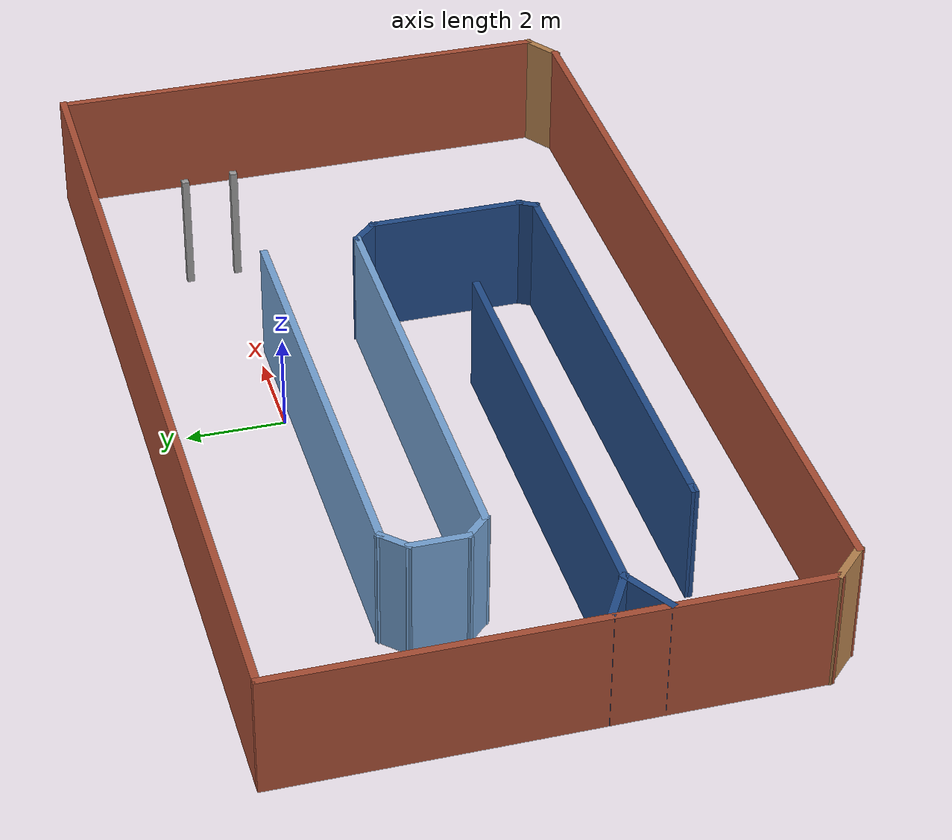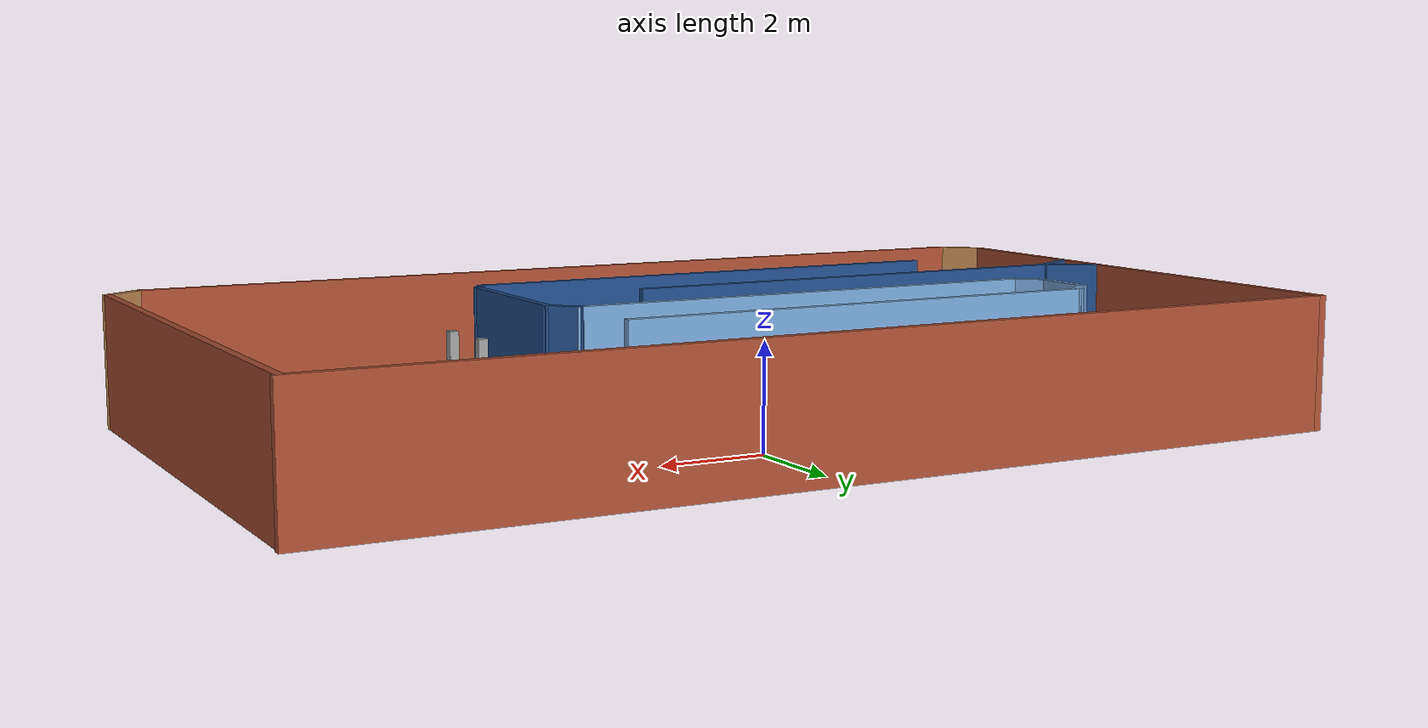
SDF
<?xml version='1.0'?>
<sdf version='1.6'>
  <model name='cooneo_room'>
    <pose frame=''>-0.395391 -2.78568 0 0 -0 0</pose>
    <link name='Wall_1'>
      <collision name='Wall_1_Collision'>
        <geometry>
          <box>
            <size>19.5061 0.15 2.5</size>
          </box>
        </geometry>
        <pose frame=''>0 0 1.25 0 -0 0</pose>
      </collision>
      <visual name='Wall_1_Visual'>
        <pose frame=''>0 0 1.25 0 -0 0</pose>
        <geometry>
          <box>
            <size>19.5061 0.15 2.5</size>
          </box>
        </geometry>
        <material>
          <script>
            <uri>file://media/materials/scripts/gazebo.material</uri>
            <name>Gazebo/Bricks</name>
          </script>
          <ambient>1 1 1 1</ambient>
        </material>
        <meta>
          <layer>0</layer>
        </meta>
      </visual>
      <pose frame=''>0.033023 5.53598 0 0 -0 0</pose>
    </link>
    <link name='Wall_19'>
      <collision name='Wall_19_Collision'>
        <geometry>
          <box>
            <size>9.5 0.15 2.5</size>
          </box>
        </geometry>
        <pose frame=''>0 0 1.25 0 -0 0</pose>
      </collision>
      <visual name='Wall_19_Visual'>
        <pose frame=''>0 0 1.25 0 -0 0</pose>
        <geometry>
          <box>
            <size>9.5 0.15 2.5</size>
          </box>
        </geometry>
        <material>
          <script>
            <uri>file://media/materials/scripts/gazebo.material</uri>
            <name>Gazebo/Grey</name>
          </script>
          <ambient>0.447059 0.623529 0.811765 1</ambient>
        </material>
        <meta>
          <layer>0</layer>
        </meta>
      </visual>
      <pose frame=''>-1.82248 2.57741 0 0 -0 3.14159</pose>
    </link>
    <link name='Wall_2'>
      <collision name='Wall_2_Collision'>
        <geometry>
          <box>
            <size>10.7589 0.15 2.5</size>
          </box>
        </geometry>
        <pose frame=''>0 0 1.25 0 -0 0</pose>
      </collision>
      <visual name='Wall_2_Visual'>
        <pose frame=''>0 0 1.25 0 -0 0</pose>
        <geometry>
          <box>
            <size>10.7589 0.15 2.5</size>
          </box>
        </geometry>
        <material>
          <script>
            <uri>file://media/materials/scripts/gazebo.material</uri>
            <name>Gazebo/Bricks</name>
          </script>
          <ambient>1 1 1 1</ambient>
        </material>
        <meta>
          <layer>0</layer>
        </meta>
      </visual>
      <pose frame=''>9.67608 0.231509 0 0 -0 -1.5708</pose>
    </link>
    <link name='Wall_20'>
      <collision name='Wall_20_Collision'>
        <geometry>
          <box>
            <size>0.75 0.15 2.5</size>
          </box>
        </geometry>
        <pose frame=''>0 0 1.25 0 -0 0</pose>
      </collision>
      <visual name='Wall_20_Visual'>
        <pose frame=''>0 0 1.25 0 -0 0</pose>
        <geometry>
          <box>
            <size>0.75 0.15 2.5</size>
          </box>
        </geometry>
        <material>
          <script>
            <uri>file://media/materials/scripts/gazebo.material</uri>
            <name>Gazebo/Grey</name>
          </script>
          <ambient>0.447059 0.623529 0.811765 1</ambient>
        </material>
        <meta>
          <layer>0</layer>
        </meta>
      </visual>
      <pose frame=''>-6.70961 2.36528 0 0 -0 -2.35619</pose>
    </link>
    <link name='Wall_21'>
      <collision name='Wall_21_Collision'>
        <geometry>
          <box>
            <size>1.25 0.15 2.5</size>
          </box>
        </geometry>
        <pose frame=''>0 0 1.25 0 -0 0</pose>
      </collision>
      <visual name='Wall_21_Visual'>
        <pose frame=''>0 0 1.25 0 -0 0</pose>
        <geometry>
          <box>
            <size>1.25 0.15 2.5</size>
          </box>
        </geometry>
        <material>
          <script>
            <uri>file://media/materials/scripts/gazebo.material</uri>
            <name>Gazebo/Grey</name>
          </script>
          <ambient>0.447059 0.623529 0.811765 1</ambient>
        </material>
        <meta>
          <layer>0</layer>
        </meta>
      </visual>
      <pose frame=''>-6.92174 1.60315 0 0 -0 -1.5708</pose>
    </link>
    <link name='Wall_22'>
      <collision name='Wall_22_Collision'>
        <geometry>
          <box>
            <size>0.75 0.15 2.5</size>
          </box>
        </geometry>
        <pose frame=''>0 0 1.25 0 -0 0</pose>
      </collision>
      <visual name='Wall_22_Visual'>
        <pose frame=''>0 0 1.25 0 -0 0</pose>
        <geometry>
          <box>
            <size>0.75 0.15 2.5</size>
          </box>
        </geometry>
        <material>
          <script>
            <uri>file://media/materials/scripts/gazebo.material</uri>
            <name>Gazebo/Grey</name>
          </script>
          <ambient>0.447059 0.623529 0.811765 1</ambient>
        </material>
        <meta>
          <layer>0</layer>
        </meta>
      </visual>
      <pose frame=''>-6.70961 0.841018 0 0 -0 -0.785398</pose>
    </link>
    <link name='Wall_23'>
      <collision name='Wall_23_Collision'>
        <geometry>
          <box>
            <size>9.5 0.15 2.5</size>
          </box>
        </geometry>
        <pose frame=''>0 0 1.25 0 -0 0</pose>
      </collision>
      <visual name='Wall_23_Visual'>
        <pose frame=''>0 0 1.25 0 -0 0</pose>
        <geometry>
          <box>
            <size>9.5 0.15 2.5</size>
          </box>
        </geometry>
        <material>
          <script>
            <uri>file://media/materials/scripts/gazebo.material</uri>
            <name>Gazebo/Grey</name>
          </script>
          <ambient>0.447059 0.623529 0.811765 1</ambient>
        </material>
        <meta>
          <layer>0</layer>
        </meta>
      </visual>
      <pose frame=''>-1.82248 0.628886 0 0 -0 0</pose>
    </link>
    <link name='Wall_24'>
      <collision name='Wall_24_Collision'>
        <geometry>
          <box>
            <size>0.75 0.15 2.5</size>
          </box>
        </geometry>
        <pose frame=''>0 0 1.25 0 -0 0</pose>
      </collision>
      <visual name='Wall_24_Visual'>
        <pose frame=''>0 0 1.25 0 -0 0</pose>
        <geometry>
          <box>
            <size>0.75 0.15 2.5</size>
          </box>
        </geometry>
        <material>
          <script>
            <uri>file://media/materials/scripts/gazebo.material</uri>
            <name>Gazebo/Grey</name>
          </script>
          <ambient>0.12549 0.290196 0.529412 1</ambient>
        </material>
        <meta>
          <layer>0</layer>
        </meta>
      </visual>
      <pose frame=''>3.06465 0.416754 0 0 -0 -0.785398</pose>
    </link>
    <link name='Wall_25'>
      <collision name='Wall_25_Collision'>
        <geometry>
          <box>
            <size>3.29859 0.15 2.5</size>
          </box>
        </geometry>
        <pose frame=''>0 0 1.25 0 -0 0</pose>
      </collision>
      <visual name='Wall_25_Visual'>
        <pose frame=''>0 0 1.25 0 -0 0</pose>
        <geometry>
          <box>
            <size>3.29859 0.15 2.5</size>
          </box>
        </geometry>
        <material>
          <script>
            <uri>file://media/materials/scripts/gazebo.material</uri>
            <name>Gazebo/Grey</name>
          </script>
          <ambient>0.12549 0.290196 0.529412 1</ambient>
        </material>
        <meta>
          <layer>0</layer>
        </meta>
      </visual>
      <pose frame=''>3.28172 -1.36946 0 0 -0 -1.56766</pose>
    </link>
    <link name='Wall_28'>
      <collision name='Wall_28_Collision'>
        <geometry>
          <box>
            <size>0.5 0.15 2.5</size>
          </box>
        </geometry>
        <pose frame=''>0 0 1.25 0 -0 0</pose>
      </collision>
      <visual name='Wall_28_Visual'>
        <pose frame=''>0 0 1.25 0 -0 0</pose>
        <geometry>
          <box>
            <size>0.5 0.15 2.5</size>
          </box>
        </geometry>
        <material>
          <script>
            <uri>file://media/materials/scripts/gazebo.material</uri>
            <name>Gazebo/Grey</name>
          </script>
          <ambient>0.12549 0.290196 0.529412 1</ambient>
        </material>
        <meta>
          <layer>0</layer>
        </meta>
      </visual>
      <pose frame=''>3.19915 -3.0951 0 0 -0 -2.0944</pose>
    </link>
    <link name='Wall_29'>
      <collision name='Wall_29_Collision'>
        <geometry>
          <box>
            <size>10 0.15 2.5</size>
          </box>
        </geometry>
        <pose frame=''>0 0 1.25 0 -0 0</pose>
      </collision>
      <visual name='Wall_29_Visual'>
        <pose frame=''>0 0 1.25 0 -0 0</pose>
        <geometry>
          <box>
            <size>10 0.15 2.5</size>
          </box>
        </geometry>
        <material>
          <script>
            <uri>file://media/materials/scripts/gazebo.material</uri>
            <name>Gazebo/Grey</name>
          </script>
          <ambient>0.12549 0.290196 0.529412 1</ambient>
        </material>
        <meta>
          <layer>0</layer>
        </meta>
      </visual>
      <pose frame=''>-1.81335 -3.24666 0 0 -0 3.14159</pose>
    </link>
    <link name='Wall_30'>
      <collision name='Wall_30_Collision'>
        <geometry>
          <box>
            <size>0.25 0.15 2.5</size>
          </box>
        </geometry>
        <pose frame=''>0 0 1.25 0 -0 0</pose>
      </collision>
      <visual name='Wall_30_Visual'>
        <pose frame=''>0 0 1.25 0 -0 0</pose>
        <geometry>
          <box>
            <size>0.25 0.15 2.5</size>
          </box>
        </geometry>
        <material>
          <script>
            <uri>file://media/materials/scripts/gazebo.material</uri>
            <name>Gazebo/Grey</name>
          </script>
          <ambient>0.12549 0.290196 0.529412 1</ambient>
        </material>
        <meta>
          <layer>0</layer>
        </meta>
      </visual>
      <pose frame=''>-6.68835 -3.24666 0 0 -0 0</pose>
    </link>
    <link name='Wall_34'>
      <collision name='Wall_34_Collision'>
        <geometry>
          <box>
            <size>9.5 0.15 2.5</size>
          </box>
        </geometry>
        <pose frame=''>0 0 1.25 0 -0 0</pose>
      </collision>
      <visual name='Wall_34_Visual'>
        <pose frame=''>0 0 1.25 0 -0 0</pose>
        <geometry>
          <box>
            <size>9.5 0.15 2.5</size>
          </box>
        </geometry>
        <material>
          <script>
            <uri>file://media/materials/scripts/gazebo.material</uri>
            <name>Gazebo/Grey</name>
          </script>
          <ambient>0.12549 0.290196 0.529412 1</ambient>
        </material>
        <meta>
          <layer>0</layer>
        </meta>
      </visual>
      <pose frame=''>-4.02813 -1.2654 0 0 -0 3.14159</pose>
    </link>
    <link name='Wall_35'>
      <collision name='Wall_35_Collision'>
        <geometry>
          <box>
            <size>1.25 0.15 2.5</size>
          </box>
        </geometry>
        <pose frame=''>0 0 1.25 0 -0 0</pose>
      </collision>
      <visual name='Wall_35_Visual'>
        <pose frame=''>0 0 1.25 0 -0 0</pose>
        <geometry>
          <box>
            <size>1.25 0.15 2.5</size>
          </box>
        </geometry>
        <material>
          <script>
            <uri>file://media/materials/scripts/gazebo.material</uri>
            <name>Gazebo/Grey</name>
          </script>
          <ambient>0.12549 0.290196 0.529412 1</ambient>
        </material>
        <meta>
          <layer>0</layer>
        </meta>
      </visual>
      <pose frame=''>-9.17945 -0.990402 0 0 -0 2.61799</pose>
    </link>
    <link name='Wall_37'>
      <collision name='Wall_37_Collision'>
        <geometry>
          <box>
            <size>1.25 0.15 2.5</size>
          </box>
        </geometry>
        <pose frame=''>0 0 1.25 0 -0 0</pose>
      </collision>
      <visual name='Wall_37_Visual'>
        <pose frame=''>0 0 1.25 0 -0 0</pose>
        <geometry>
          <box>
            <size>1.25 0.15 2.5</size>
          </box>
        </geometry>
        <material>
          <script>
            <uri>file://media/materials/scripts/gazebo.material</uri>
            <name>Gazebo/Grey</name>
          </script>
          <ambient>0.12549 0.290196 0.529412 1</ambient>
        </material>
        <meta>
          <layer>0</layer>
        </meta>
      </visual>
      <pose frame=''>-9.17945 -1.5404 0 0 -0 -2.61799</pose>
    </link>
    <link name='Wall_39'>
      <collision name='Wall_39_Collision'>
        <geometry>
          <box>
            <size>1 0.15 2.5</size>
          </box>
        </geometry>
        <pose frame=''>0 0 1.25 0 -0 0</pose>
      </collision>
      <visual name='Wall_39_Visual'>
        <pose frame=''>0 0 1.25 0 -0 0</pose>
        <geometry>
          <box>
            <size>1 0.15 2.5</size>
          </box>
        </geometry>
        <material>
          <script>
            <uri>file://media/materials/scripts/gazebo.material</uri>
            <name>Gazebo/Wood</name>
          </script>
          <ambient>1 1 1 1</ambient>
        </material>
        <meta>
          <layer>0</layer>
        </meta>
      </visual>
      <pose frame=''>-9.37948 -5.2044 0 0 -0 -0.785398</pose>
    </link>
    <link name='Wall_4'>
      <collision name='Wall_4_Collision'>
        <geometry>
          <box>
            <size>10.5899 0.15 2.5</size>
          </box>
        </geometry>
        <pose frame=''>0 0 1.25 0 -0 0</pose>
      </collision>
      <visual name='Wall_4_Visual'>
        <pose frame=''>0 0 1.25 0 -0 0</pose>
        <geometry>
          <box>
            <size>10.5899 0.15 2.5</size>
          </box>
        </geometry>
        <material>
          <script>
            <uri>file://media/materials/scripts/gazebo.material</uri>
            <name>Gazebo/Bricks</name>
          </script>
          <ambient>1 1 1 1</ambient>
        </material>
        <meta>
          <layer>0</layer>
        </meta>
      </visual>
      <pose frame=''>-9.68 0.316053 0 0 -0 -1.5708</pose>
    </link>
    <link name='Wall_43'>
      <collision name='Wall_43_Collision'>
        <geometry>
          <box>
            <size>18.25 0.15 2.5</size>
          </box>
        </geometry>
        <pose frame=''>0 0 1.25 0 -0 0</pose>
      </collision>
      <visual name='Wall_43_Visual'>
        <pose frame=''>0 0 1.25 0 -0 0</pose>
        <geometry>
          <box>
            <size>18.25 0.15 2.5</size>
          </box>
        </geometry>
        <material>
          <script>
            <uri>file://media/materials/scripts/gazebo.material</uri>
            <name>Gazebo/Bricks</name>
          </script>
          <ambient>1 1 1 1</ambient>
        </material>
        <meta>
          <layer>0</layer>
        </meta>
      </visual>
      <pose frame=''>-0.028957 -5.50492 0 0 -0 0</pose>
    </link>
    <link name='Wall_44'>
      <collision name='Wall_44_Collision'>
        <geometry>
          <box>
            <size>0.934641 0.15 2.5</size>
          </box>
        </geometry>
        <pose frame=''>0 0 1.25 0 -0 0</pose>
      </collision>
      <visual name='Wall_44_Visual'>
        <pose frame=''>0 0 1.25 0 -0 0</pose>
        <geometry>
          <box>
            <size>0.934641 0.15 2.5</size>
          </box>
        </geometry>
        <material>
          <script>
            <uri>file://media/materials/scripts/gazebo.material</uri>
            <name>Gazebo/Wood</name>
          </script>
          <ambient>1 1 1 1</ambient>
        </material>
        <meta>
          <layer>0</layer>
        </meta>
      </visual>
      <pose frame=''>9.34856 -5.28894 0 0 -0 0.582974</pose>
    </link>
    <link name='Wall_50'>
      <collision name='Wall_50_Collision'>
        <geometry>
          <box>
            <size>0.15 0.15 2.5</size>
          </box>
        </geometry>
        <pose frame=''>0 0 1.25 0 -0 0</pose>
      </collision>
      <visual name='Wall_50_Visual'>
        <pose frame=''>0 0 1.25 0 -0 0</pose>
        <geometry>
          <box>
            <size>0.15 0.15 2.5</size>
          </box>
        </geometry>
        <material>
          <script>
            <uri>file://media/materials/scripts/gazebo.material</uri>
            <name>Gazebo/Grey</name>
          </script>
          <ambient>1 1 1 1</ambient>
        </material>
        <meta>
          <layer>0</layer>
        </meta>
      </visual>
      <pose frame=''>5.90662 3.59611 0 0 -0 0</pose>
    </link>
    <link name='Wall_67'>
      <collision name='Wall_67_Collision'>
        <geometry>
          <box>
            <size>0.15 0.15 2.5</size>
          </box>
        </geometry>
        <pose frame=''>0 0 1.25 0 -0 0</pose>
      </collision>
      <visual name='Wall_67_Visual'>
        <pose frame=''>0 0 1.25 0 -0 0</pose>
        <geometry>
          <box>
            <size>0.15 0.15 2.5</size>
          </box>
        </geometry>
        <material>
          <script>
            <uri>file://media/materials/scripts/gazebo.material</uri>
            <name>Gazebo/Grey</name>
          </script>
          <ambient>1 1 1 1</ambient>
        </material>
        <meta>
          <layer>0</layer>
        </meta>
      </visual>
      <pose frame=''>5.97222 2.55329 0 0 -0 0</pose>
    </link>
    <link name='Wall_68'>
      <collision name='Wall_68_Collision'>
        <geometry>
          <box>
            <size>0.15 0.15 2.5</size>
          </box>
        </geometry>
        <pose frame=''>0 0 1.25 0 -0 0</pose>
      </collision>
      <visual name='Wall_68_Visual'>
        <pose frame=''>0 0 1.25 0 -0 0</pose>
        <geometry>
          <box>
            <size>0.15 0.15 2.5</size>
          </box>
        </geometry>
        <material>
          <script>
            <uri>file://media/materials/scripts/gazebo.material</uri>
            <name>Gazebo/Grey</name>
          </script>
          <ambient>1 1 1 1</ambient>
        </material>
        <meta>
          <layer>0</layer>
        </meta>
      </visual>
      <pose frame=''>5.97222 2.55329 0 0 -0 0</pose>
    </link>
    <static>1</static>
  </model>
</sdf>
